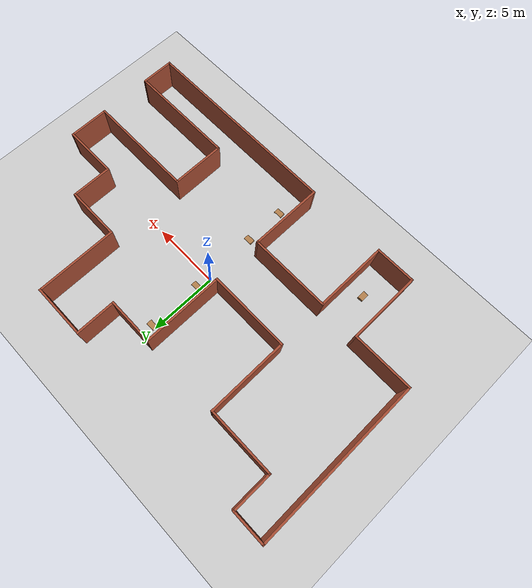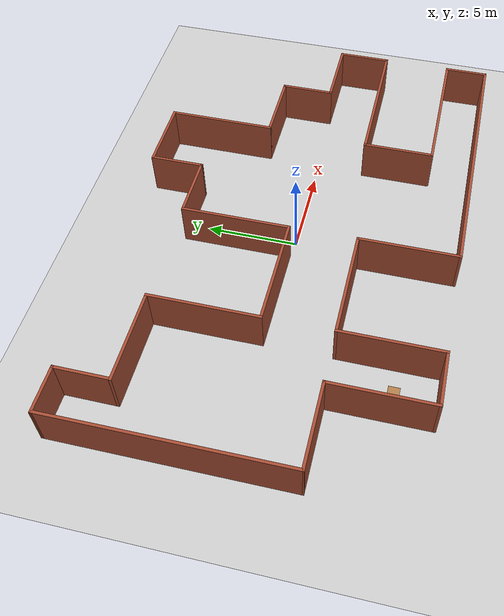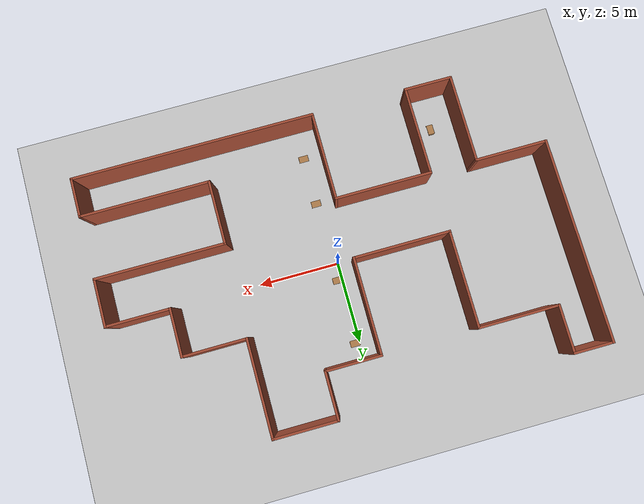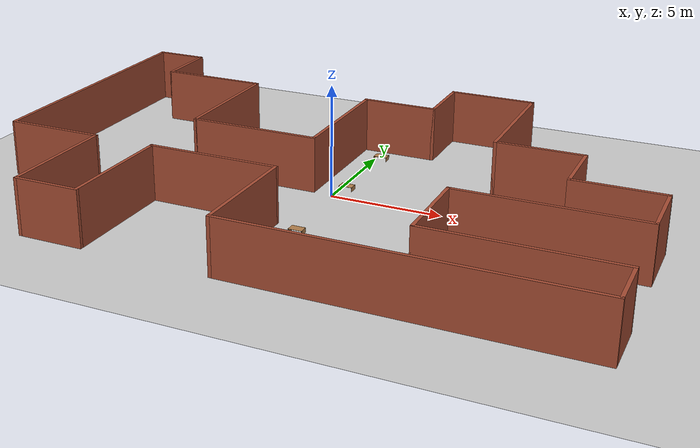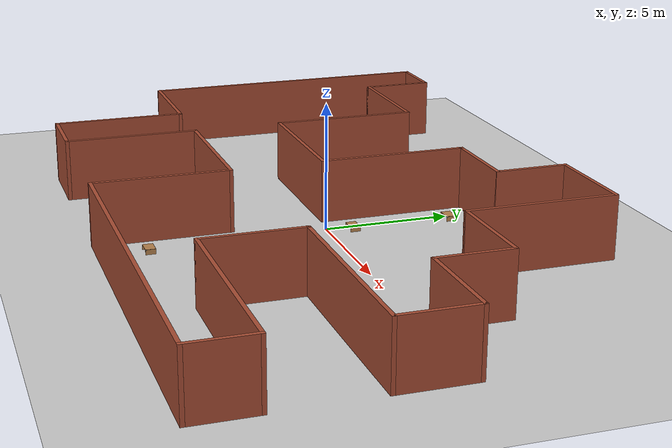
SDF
<?xml version="1.0"?>
<sdf version="1.7">
  <world name="test_world">

    <include>
      <uri>model://ground_plane</uri>
    </include>

    <include>
      <uri>model://sun</uri>
    </include>

    <scene>
      <shadows>false</shadows>
    </scene>

    <gui fullscreen='0'>
      <camera name='user_camera'>
        <pose frame=''>0.319654 -0.235002 9.29441 0 1.5138 0.009599</pose>
        <view_controller>orbit</view_controller>
        <projection_type>perspective</projection_type>
      </camera>
    </gui>

    <physics type="ode">
      <real_time_update_rate>1000.0</real_time_update_rate>
      <max_step_size>0.001</max_step_size>
      <real_time_factor>1</real_time_factor>
      <ode>
        <solver>
          <type>quick</type>
          <iters>150</iters>
          <precon_iters>0</precon_iters>
          <sor>1.400000</sor>
          <use_dynamic_moi_rescaling>1</use_dynamic_moi_rescaling>
        </solver>
        <constraints>
          <cfm>0.00001</cfm>
          <erp>0.2</erp>
          <contact_max_correcting_vel>2000.000000</contact_max_correcting_vel>
          <contact_surface_layer>0.01000</contact_surface_layer>
        </constraints>
      </ode>
    </physics>

    <model name="test_area">
      <static>1</static>
      <include>
        <uri>model://test_area</uri>
        <pose>0 0 0 0 0 0</pose>
      </include>
    </model>

    <include>
      <uri>model://qr_table1</uri>
      <name>qr_table1</name>
      <pose>0 1 0 0 0 0</pose>
    </include>

    <include>
      <uri>model://qr_table2</uri>
      <name>qr_table2</name>
      <pose>0 5 0 0 0 0</pose>
    </include>

    <include>
      <uri>model://qr_table3</uri>
      <name>qr_table3</name>
      <pose>0 -4 0 0 0 0</pose>
    </include>

    <include>
      <uri>model://qr_table4</uri>
      <name>qr_table4</name>
      <pose>0 -7 0 0 0 0</pose>
    </include>

    <include>
      <uri>model://qr_table5</uri>
      <name>qr_table5</name>
      <pose>-8 -7 0 0 0 1.5707</pose>
    </include>

  </world>
</sdf>

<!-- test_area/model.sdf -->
<sdf version='1.7'>
  <model name='test_area'>
    <pose>0 0 0 0 0 0</pose>
    <link name='Wall_15'>
      <collision name='Wall_15_Collision'>
        <geometry>
          <box>
            <size>2.5 0.15 2.5</size>
          </box>
        </geometry>
        <pose>0 0 1.25 0 -0 0</pose>
      </collision>
      <visual name='Wall_15_Visual'>
        <pose>0 0 1.25 0 -0 0</pose>
        <geometry>
          <box>
            <size>2.5 0.15 2.5</size>
          </box>
        </geometry>
        <material>
          <script>
            <uri>file://media/materials/scripts/gazebo.material</uri>
            <name>Gazebo/Bricks</name>
          </script>
          <ambient>1 1 1 1</ambient>
        </material>
        <meta>
          <layer>0</layer>
        </meta>
      </visual>
      <pose>-12.7998 8.87485 0 0 -0 0</pose>
    </link>
    <link name='Wall_16'>
      <collision name='Wall_16_Collision'>
        <geometry>
          <box>
            <size>3 0.15 2.5</size>
          </box>
        </geometry>
        <pose>0 0 1.25 0 -0 0</pose>
      </collision>
      <visual name='Wall_16_Visual'>
        <pose>0 0 1.25 0 -0 0</pose>
        <geometry>
          <box>
            <size>3 0.15 2.5</size>
          </box>
        </geometry>
        <material>
          <script>
            <uri>file://media/materials/scripts/gazebo.material</uri>
            <name>Gazebo/Bricks</name>
          </script>
          <ambient>1 1 1 1</ambient>
        </material>
        <meta>
          <layer>0</layer>
        </meta>
      </visual>
      <pose>-11.6248 7.44985 0 0 -0 -1.5708</pose>
    </link>
    <link name='Wall_17'>
      <collision name='Wall_17_Collision'>
        <geometry>
          <box>
            <size>5 0.15 2.5</size>
          </box>
        </geometry>
        <pose>0 0 1.25 0 -0 0</pose>
      </collision>
      <visual name='Wall_17_Visual'>
        <pose>0 0 1.25 0 -0 0</pose>
        <geometry>
          <box>
            <size>5 0.15 2.5</size>
          </box>
        </geometry>
        <material>
          <script>
            <uri>file://media/materials/scripts/gazebo.material</uri>
            <name>Gazebo/Bricks</name>
          </script>
          <ambient>1 1 1 1</ambient>
        </material>
        <meta>
          <layer>0</layer>
        </meta>
      </visual>
      <pose>-9.19985 6.02485 0 0 -0 0</pose>
    </link>
    <link name='Wall_18'>
      <collision name='Wall_18_Collision'>
        <geometry>
          <box>
            <size>6 0.15 2.5</size>
          </box>
        </geometry>
        <pose>0 0 1.25 0 -0 0</pose>
      </collision>
      <visual name='Wall_18_Visual'>
        <pose>0 0 1.25 0 -0 0</pose>
        <geometry>
          <box>
            <size>6 0.15 2.5</size>
          </box>
        </geometry>
        <material>
          <script>
            <uri>file://media/materials/scripts/gazebo.material</uri>
            <name>Gazebo/Bricks</name>
          </script>
          <ambient>1 1 1 1</ambient>
        </material>
        <meta>
          <layer>0</layer>
        </meta>
      </visual>
      <pose>-6.77485 3.09985 0 0 -0 -1.5708</pose>
    </link>
    <link name='Wall_19'>
      <collision name='Wall_19_Collision'>
        <geometry>
          <box>
            <size>6 0.15 2.5</size>
          </box>
        </geometry>
        <pose>0 0 1.25 0 -0 0</pose>
      </collision>
      <visual name='Wall_19_Visual'>
        <pose>0 0 1.25 0 -0 0</pose>
        <geometry>
          <box>
            <size>6 0.15 2.5</size>
          </box>
        </geometry>
        <material>
          <script>
            <uri>file://media/materials/scripts/gazebo.material</uri>
            <name>Gazebo/Bricks</name>
          </script>
          <ambient>1 1 1 1</ambient>
        </material>
        <meta>
          <layer>0</layer>
        </meta>
      </visual>
      <pose>-3.84985 0.174849 0 0 -0 0</pose>
    </link>
    <link name='Wall_20'>
      <collision name='Wall_20_Collision'>
        <geometry>
          <box>
            <size>6 0.15 2.5</size>
          </box>
        </geometry>
        <pose>0 0 1.25 0 -0 0</pose>
      </collision>
      <visual name='Wall_20_Visual'>
        <pose>0 0 1.25 0 -0 0</pose>
        <geometry>
          <box>
            <size>6 0.15 2.5</size>
          </box>
        </geometry>
        <material>
          <script>
            <uri>file://media/materials/scripts/gazebo.material</uri>
            <name>Gazebo/Bricks</name>
          </script>
          <ambient>1 1 1 1</ambient>
        </material>
        <meta>
          <layer>0</layer>
        </meta>
      </visual>
      <pose>-0.92485 3.09985 0 0 -0 1.5708</pose>
    </link>
    <link name='Wall_21'>
      <collision name='Wall_21_Collision'>
        <geometry>
          <box>
            <size>3.5 0.15 2.5</size>
          </box>
        </geometry>
        <pose>0 0 1.25 0 -0 0</pose>
      </collision>
      <visual name='Wall_21_Visual'>
        <pose>0 0 1.25 0 -0 0</pose>
        <geometry>
          <box>
            <size>3.5 0.15 2.5</size>
          </box>
        </geometry>
        <material>
          <script>
            <uri>file://media/materials/scripts/gazebo.material</uri>
            <name>Gazebo/Bricks</name>
          </script>
          <ambient>1 1 1 1</ambient>
        </material>
        <meta>
          <layer>0</layer>
        </meta>
      </visual>
      <pose>0.750151 6.02485 0 0 -0 0</pose>
    </link>
    <link name='Wall_22'>
      <collision name='Wall_22_Collision'>
        <geometry>
          <box>
            <size>3 0.15 2.5</size>
          </box>
        </geometry>
        <pose>0 0 1.25 0 -0 0</pose>
      </collision>
      <visual name='Wall_22_Visual'>
        <pose>0 0 1.25 0 -0 0</pose>
        <geometry>
          <box>
            <size>3 0.15 2.5</size>
          </box>
        </geometry>
        <material>
          <script>
            <uri>file://media/materials/scripts/gazebo.material</uri>
            <name>Gazebo/Bricks</name>
          </script>
          <ambient>1 1 1 1</ambient>
        </material>
        <meta>
          <layer>0</layer>
        </meta>
      </visual>
      <pose>2.42515 7.44985 0 0 -0 1.5708</pose>
    </link>
    <link name='Wall_23'>
      <collision name='Wall_23_Collision'>
        <geometry>
          <box>
            <size>4 0.15 2.5</size>
          </box>
        </geometry>
        <pose>0 0 1.25 0 -0 0</pose>
      </collision>
      <visual name='Wall_23_Visual'>
        <pose>0 0 1.25 0 -0 0</pose>
        <geometry>
          <box>
            <size>4 0.15 2.5</size>
          </box>
        </geometry>
        <material>
          <script>
            <uri>file://media/materials/scripts/gazebo.material</uri>
            <name>Gazebo/Bricks</name>
          </script>
          <ambient>1 1 1 1</ambient>
        </material>
        <meta>
          <layer>0</layer>
        </meta>
      </visual>
      <pose>4.35015 8.87485 0 0 -0 0</pose>
    </link>
    <link name='Wall_24'>
      <collision name='Wall_24_Collision'>
        <geometry>
          <box>
            <size>6 0.15 2.5</size>
          </box>
        </geometry>
        <pose>0 0 1.25 0 -0 0</pose>
      </collision>
      <visual name='Wall_24_Visual'>
        <pose>0 0 1.25 0 -0 0</pose>
        <geometry>
          <box>
            <size>6 0.15 2.5</size>
          </box>
        </geometry>
        <material>
          <script>
            <uri>file://media/materials/scripts/gazebo.material</uri>
            <name>Gazebo/Bricks</name>
          </script>
          <ambient>1 1 1 1</ambient>
        </material>
        <meta>
          <layer>0</layer>
        </meta>
      </visual>
      <pose>6.27515 5.94985 0 0 -0 -1.5708</pose>
    </link>
    <link name='Wall_25'>
      <collision name='Wall_25_Collision'>
        <geometry>
          <box>
            <size>4 0.15 2.5</size>
          </box>
        </geometry>
        <pose>0 0 1.25 0 -0 0</pose>
      </collision>
      <visual name='Wall_25_Visual'>
        <pose>0 0 1.25 0 -0 0</pose>
        <geometry>
          <box>
            <size>4 0.15 2.5</size>
          </box>
        </geometry>
        <material>
          <script>
            <uri>file://media/materials/scripts/gazebo.material</uri>
            <name>Gazebo/Bricks</name>
          </script>
          <ambient>1 1 1 1</ambient>
        </material>
        <meta>
          <layer>0</layer>
        </meta>
      </visual>
      <pose>8.20015 3.02485 0 0 -0 0</pose>
    </link>
    <link name='Wall_26'>
      <collision name='Wall_26_Collision'>
        <geometry>
          <box>
            <size>3 0.15 2.5</size>
          </box>
        </geometry>
        <pose>0 0 1.25 0 -0 0</pose>
      </collision>
      <visual name='Wall_26_Visual'>
        <pose>0 0 1.25 0 -0 0</pose>
        <geometry>
          <box>
            <size>3 0.15 2.5</size>
          </box>
        </geometry>
        <material>
          <script>
            <uri>file://media/materials/scripts/gazebo.material</uri>
            <name>Gazebo/Bricks</name>
          </script>
          <ambient>1 1 1 1</ambient>
        </material>
        <meta>
          <layer>0</layer>
        </meta>
      </visual>
      <pose>10.1252 1.59985 0 0 -0 -1.5708</pose>
    </link>
    <link name='Wall_27'>
      <collision name='Wall_27_Collision'>
        <geometry>
          <box>
            <size>4 0.15 2.5</size>
          </box>
        </geometry>
        <pose>0 0 1.25 0 -0 0</pose>
      </collision>
      <visual name='Wall_27_Visual'>
        <pose>0 0 1.25 0 -0 0</pose>
        <geometry>
          <box>
            <size>4 0.15 2.5</size>
          </box>
        </geometry>
        <material>
          <script>
            <uri>file://media/materials/scripts/gazebo.material</uri>
            <name>Gazebo/Bricks</name>
          </script>
          <ambient>1 1 1 1</ambient>
        </material>
        <meta>
          <layer>0</layer>
        </meta>
      </visual>
      <pose>12.0502 0.174849 0 0 -0 0</pose>
    </link>
    <link name='Wall_28'>
      <collision name='Wall_28_Collision'>
        <geometry>
          <box>
            <size>3 0.15 2.5</size>
          </box>
        </geometry>
        <pose>0 0 1.25 0 -0 0</pose>
      </collision>
      <visual name='Wall_28_Visual'>
        <pose>0 0 1.25 0 -0 0</pose>
        <geometry>
          <box>
            <size>3 0.15 2.5</size>
          </box>
        </geometry>
        <material>
          <script>
            <uri>file://media/materials/scripts/gazebo.material</uri>
            <name>Gazebo/Bricks</name>
          </script>
          <ambient>1 1 1 1</ambient>
        </material>
        <meta>
          <layer>0</layer>
        </meta>
      </visual>
      <pose>13.9751 -1.25015 0 0 -0 -1.5708</pose>
    </link>
    <link name='Wall_29'>
      <collision name='Wall_29_Collision'>
        <geometry>
          <box>
            <size>8 0.15 2.5</size>
          </box>
        </geometry>
        <pose>0 0 1.25 0 -0 0</pose>
      </collision>
      <visual name='Wall_29_Visual'>
        <pose>0 0 1.25 0 -0 0</pose>
        <geometry>
          <box>
            <size>8 0.15 2.5</size>
          </box>
        </geometry>
        <material>
          <script>
            <uri>file://media/materials/scripts/gazebo.material</uri>
            <name>Gazebo/Bricks</name>
          </script>
          <ambient>1 1 1 1</ambient>
        </material>
        <meta>
          <layer>0</layer>
        </meta>
      </visual>
      <pose>10.0502 -2.67515 0 0 -0 3.14159</pose>
    </link>
    <link name='Wall_30'>
      <collision name='Wall_30_Collision'>
        <geometry>
          <box>
            <size>4 0.15 2.5</size>
          </box>
        </geometry>
        <pose>0 0 1.25 0 -0 0</pose>
      </collision>
      <visual name='Wall_30_Visual'>
        <pose>0 0 1.25 0 -0 0</pose>
        <geometry>
          <box>
            <size>4 0.15 2.5</size>
          </box>
        </geometry>
        <material>
          <script>
            <uri>file://media/materials/scripts/gazebo.material</uri>
            <name>Gazebo/Bricks</name>
          </script>
          <ambient>1 1 1 1</ambient>
        </material>
        <meta>
          <layer>0</layer>
        </meta>
      </visual>
      <pose>6.12515 -4.60015 0 0 -0 -1.5708</pose>
    </link>
    <link name='Wall_31'>
      <collision name='Wall_31_Collision'>
        <geometry>
          <box>
            <size>8 0.15 2.5</size>
          </box>
        </geometry>
        <pose>0 0 1.25 0 -0 0</pose>
      </collision>
      <visual name='Wall_31_Visual'>
        <pose>0 0 1.25 0 -0 0</pose>
        <geometry>
          <box>
            <size>8 0.15 2.5</size>
          </box>
        </geometry>
        <material>
          <script>
            <uri>file://media/materials/scripts/gazebo.material</uri>
            <name>Gazebo/Bricks</name>
          </script>
          <ambient>1 1 1 1</ambient>
        </material>
        <meta>
          <layer>0</layer>
        </meta>
      </visual>
      <pose>10.0502 -6.52515 0 0 -0 0</pose>
    </link>
    <link name='Wall_33'>
      <collision name='Wall_33_Collision'>
        <geometry>
          <box>
            <size>2.5 0.15 2.5</size>
          </box>
        </geometry>
        <pose>0 0 1.25 0 -0 0</pose>
      </collision>
      <visual name='Wall_33_Visual'>
        <pose>0 0 1.25 0 -0 0</pose>
        <geometry>
          <box>
            <size>2.5 0.15 2.5</size>
          </box>
        </geometry>
        <material>
          <script>
            <uri>file://media/materials/scripts/gazebo.material</uri>
            <name>Gazebo/Bricks</name>
          </script>
          <ambient>1 1 1 1</ambient>
        </material>
        <meta>
          <layer>0</layer>
        </meta>
      </visual>
      <pose>13.9751 -7.70015 0 0 -0 -1.5708</pose>
    </link>
    <link name='Wall_34'>
      <collision name='Wall_34_Collision'>
        <geometry>
          <box>
            <size>15 0.15 2.5</size>
          </box>
        </geometry>
        <pose>0 0 1.25 0 -0 0</pose>
      </collision>
      <visual name='Wall_34_Visual'>
        <pose>0 0 1.25 0 -0 0</pose>
        <geometry>
          <box>
            <size>15 0.15 2.5</size>
          </box>
        </geometry>
        <material>
          <script>
            <uri>file://media/materials/scripts/gazebo.material</uri>
            <name>Gazebo/Bricks</name>
          </script>
          <ambient>1 1 1 1</ambient>
        </material>
        <meta>
          <layer>0</layer>
        </meta>
      </visual>
      <pose>6.55015 -8.87515 0 0 -0 3.14159</pose>
    </link>
    <link name='Wall_35'>
      <collision name='Wall_35_Collision'>
        <geometry>
          <box>
            <size>5.5 0.15 2.5</size>
          </box>
        </geometry>
        <pose>0 0 1.25 0 -0 0</pose>
      </collision>
      <visual name='Wall_35_Visual'>
        <pose>0 0 1.25 0 -0 0</pose>
        <geometry>
          <box>
            <size>5.5 0.15 2.5</size>
          </box>
        </geometry>
        <material>
          <script>
            <uri>file://media/materials/scripts/gazebo.material</uri>
            <name>Gazebo/Bricks</name>
          </script>
          <ambient>1 1 1 1</ambient>
        </material>
        <meta>
          <layer>0</layer>
        </meta>
      </visual>
      <pose>-0.874849 -6.20015 0 0 -0 1.5708</pose>
    </link>
    <link name='Wall_36'>
      <collision name='Wall_36_Collision'>
        <geometry>
          <box>
            <size>6 0.15 2.5</size>
          </box>
        </geometry>
        <pose>0 0 1.25 0 -0 0</pose>
      </collision>
      <visual name='Wall_36_Visual'>
        <pose>0 0 1.25 0 -0 0</pose>
        <geometry>
          <box>
            <size>6 0.15 2.5</size>
          </box>
        </geometry>
        <material>
          <script>
            <uri>file://media/materials/scripts/gazebo.material</uri>
            <name>Gazebo/Bricks</name>
          </script>
          <ambient>1 1 1 1</ambient>
        </material>
        <meta>
          <layer>0</layer>
        </meta>
      </visual>
      <pose>-3.79985 -3.52515 0 0 -0 3.14159</pose>
    </link>
    <link name='Wall_37'>
      <collision name='Wall_37_Collision'>
        <geometry>
          <box>
            <size>5.5 0.15 2.5</size>
          </box>
        </geometry>
        <pose>0 0 1.25 0 -0 0</pose>
      </collision>
      <visual name='Wall_37_Visual'>
        <pose>0 0 1.25 0 -0 0</pose>
        <geometry>
          <box>
            <size>5.5 0.15 2.5</size>
          </box>
        </geometry>
        <material>
          <script>
            <uri>file://media/materials/scripts/gazebo.material</uri>
            <name>Gazebo/Bricks</name>
          </script>
          <ambient>1 1 1 1</ambient>
        </material>
        <meta>
          <layer>0</layer>
        </meta>
      </visual>
      <pose>-6.72485 -6.20015 0 0 -0 -1.5708</pose>
    </link>
    <link name='Wall_38'>
      <collision name='Wall_38_Collision'>
        <geometry>
          <box>
            <size>3 0.15 2.5</size>
          </box>
        </geometry>
        <pose>0 0 1.25 0 -0 0</pose>
      </collision>
      <visual name='Wall_38_Visual'>
        <pose>0 0 1.25 0 -0 0</pose>
        <geometry>
          <box>
            <size>3 0.15 2.5</size>
          </box>
        </geometry>
        <material>
          <script>
            <uri>file://media/materials/scripts/gazebo.material</uri>
            <name>Gazebo/Bricks</name>
          </script>
          <ambient>1 1 1 1</ambient>
        </material>
        <meta>
          <layer>0</layer>
        </meta>
      </visual>
      <pose>-8.14985 -8.87515 0 0 -0 3.14159</pose>
    </link>
    <link name='Wall_39'>
      <collision name='Wall_39_Collision'>
        <geometry>
          <box>
            <size>5.5 0.15 2.5</size>
          </box>
        </geometry>
        <pose>0 0 1.25 0 -0 0</pose>
      </collision>
      <visual name='Wall_39_Visual'>
        <pose>0 0 1.25 0 -0 0</pose>
        <geometry>
          <box>
            <size>5.5 0.15 2.5</size>
          </box>
        </geometry>
        <material>
          <script>
            <uri>file://media/materials/scripts/gazebo.material</uri>
            <name>Gazebo/Bricks</name>
          </script>
          <ambient>1 1 1 1</ambient>
        </material>
        <meta>
          <layer>0</layer>
        </meta>
      </visual>
      <pose>-9.57485 -6.20015 0 0 -0 1.5708</pose>
    </link>
    <link name='Wall_40'>
      <collision name='Wall_40_Collision'>
        <geometry>
          <box>
            <size>4.5 0.15 2.5</size>
          </box>
        </geometry>
        <pose>0 0 1.25 0 -0 0</pose>
      </collision>
      <visual name='Wall_40_Visual'>
        <pose>0 0 1.25 0 -0 0</pose>
        <geometry>
          <box>
            <size>4.5 0.15 2.5</size>
          </box>
        </geometry>
        <material>
          <script>
            <uri>file://media/materials/scripts/gazebo.material</uri>
            <name>Gazebo/Bricks</name>
          </script>
          <ambient>1 1 1 1</ambient>
        </material>
        <meta>
          <layer>0</layer>
        </meta>
      </visual>
      <pose>-11.7498 -3.52515 0 0 -0 3.14159</pose>
    </link>
    <link name='Wall_41'>
      <collision name='Wall_41_Collision'>
        <geometry>
          <box>
            <size>12.5501 0.15 2.5</size>
          </box>
        </geometry>
        <pose>0 0 1.25 0 -0 0</pose>
      </collision>
      <visual name='Wall_41_Visual'>
        <pose>0 0 1.25 0 -0 0</pose>
        <geometry>
          <box>
            <size>12.5501 0.15 2.5</size>
          </box>
        </geometry>
        <material>
          <script>
            <uri>file://media/materials/scripts/gazebo.material</uri>
            <name>Gazebo/Bricks</name>
          </script>
          <ambient>1 1 1 1</ambient>
        </material>
        <meta>
          <layer>0</layer>
        </meta>
      </visual>
      <pose>-13.9498 2.67485 0 0 -0 1.57483</pose>
    </link>
    <static>1</static>
  </model>
</sdf>

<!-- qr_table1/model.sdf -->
<sdf version='1.7'>
  <model name='qr_table1'>

    <link name='table_leg_1'>

      <pose>0 0 0.1 0 0 0</pose>
	<static>false</static>
      <visual name='visual'>
        <pose>0 0 0 0 -0 0</pose>
        <geometry>
          <box>
            <size>0.005 0.4 0.2</size>
          </box>
        </geometry>
        <material>
          <lighting>1</lighting>
          <script>
            <uri>file://media/materials/scripts/gazebo.material</uri>
            <name>Gazebo/Wood</name>
          </script>
          <shader type='pixel'>
            <normal_map>__default__</normal_map>
          </shader>
          <ambient>0.3 0.3 0.3 1</ambient>
          <diffuse>0.7 0.7 0.7 1</diffuse>
          <specular>0.01 0.01 0.01 1</specular>
          <emissive>0 0 0 1</emissive>
        </material>
        <transparency>0</transparency>
        <cast_shadows>1</cast_shadows>
      </visual>

      <collision name="table_leg_1_collision">
        <pose>0 0 0.1 0 0 0</pose>
        <geometry>
          <box>
            <size>0.005 0.4 0.2</size>
          </box>
        </geometry>
      </collision>

    </link>

    <link name='table'>

      <pose>0.2975 0 0.2025 0 -0 0</pose>
	<static>false</static>
      <visual name='visual'>
        <pose>0.0 0 0 0 -0 0</pose>
        <geometry>
          <box>
            <size>0.6 0.4 0.005</size>
          </box>
        </geometry>
        <material>
          <lighting>1</lighting>
          <script>
            <uri>file://media/materials/scripts/gazebo.material</uri>
            <name>Gazebo/Wood</name>
          </script>
          <shader type='pixel'>
            <normal_map>__default__</normal_map>
          </shader>
          <ambient>0.3 0.3 0.3 1</ambient>
          <diffuse>0.7 0.7 0.7 1</diffuse>
          <specular>0.01 0.01 0.01 1</specular>
          <emissive>0 0 0 1</emissive>
        </material>
        <transparency>0</transparency>
        <cast_shadows>1</cast_shadows>
      </visual>

      <collision name="table_collision">
        <pose>0.0 0 0 0 -0 0</pose>
        <geometry>
          <box>
            <size>0.6 0.4 0.005</size>
          </box>
        </geometry>
      </collision>

    </link>

    <link name='table_leg_2'>
      <pose>0.595 0 0.1 0 -0 0</pose>
	<static>True</static>
      <visual name='visual'>
        <pose>0 0 0 0 -0 0</pose>
        <geometry>
          <box>
            <size>0.005 0.4 0.2</size>
          </box>
        </geometry>
        <material>
          <lighting>1</lighting>
          <script>
            <uri>file://media/materials/scripts/gazebo.material</uri>
            <name>Gazebo/Wood</name>
          </script>
          <shader type='pixel'>
            <normal_map>__default__</normal_map>
          </shader>
          <ambient>0.3 0.3 0.3 1</ambient>
          <diffuse>0.7 0.7 0.7 1</diffuse>
          <specular>0.01 0.01 0.01 1</specular>
          <emissive>0 0 0 1</emissive>
        </material>
        <transparency>0</transparency>
        <cast_shadows>1</cast_shadows>
      </visual>

      <collision name="table_leg_2_collision">
        <pose>0.0 0 0 0 -0 0</pose>
        <geometry>
          <box>
            <size>0.005 0.4 0.2</size>
          </box>
        </geometry>
      </collision>

    </link>

    <link name='qr_code'>
    	<pose>0.5975 -0.17 0.175 0 0 0</pose>
      <visual name='qr'>
      <pose>0 0 0 0 -0 0</pose>
        <geometry>
          <box>
            <size>0.001 0.05 0.05</size>
          </box>
        </geometry>
        <material>
          <script>

            <uri>model://qr_table1/materials/scripts</uri>
            <uri>model://qr_table1/materials/textures</uri>
            <name>qrs/Diffuse1</name>

          </script>
        </material>
      </visual>

      <collision name="qr_code_collision">
        <pose>0 0 0 0 -0 0</pose>
        <geometry>
          <box>
            <size>0.001 0.05 0.05</size>
          </box>
        </geometry>
      </collision>

    </link>

    <static>1</static>
    <allow_auto_disable>1</allow_auto_disable>
  </model>
</sdf>

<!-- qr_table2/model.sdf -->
<sdf version='1.7'>
  <model name='qr_table2'>

    <link name='table_leg_1'>

      <pose>0 0 0.1 0 0 0</pose>
	<static>false</static>
      <visual name='visual'>
        <pose>0 0 0 0 -0 0</pose>
        <geometry>
          <box>
            <size>0.005 0.4 0.2</size>
          </box>
        </geometry>
        <material>
          <lighting>1</lighting>
          <script>
            <uri>file://media/materials/scripts/gazebo.material</uri>
            <name>Gazebo/Wood</name>
          </script>
          <shader type='pixel'>
            <normal_map>__default__</normal_map>
          </shader>
          <ambient>0.3 0.3 0.3 1</ambient>
          <diffuse>0.7 0.7 0.7 1</diffuse>
          <specular>0.01 0.01 0.01 1</specular>
          <emissive>0 0 0 1</emissive>
        </material>
        <transparency>0</transparency>
        <cast_shadows>1</cast_shadows>
      </visual>

      <collision name="table_leg_1_collision">
        <pose>0 0 0.1 0 0 0</pose>
        <geometry>
          <box>
            <size>0.005 0.4 0.2</size>
          </box>
        </geometry>
      </collision>

    </link>

    <link name='table'>

      <pose>0.2975 0 0.2025 0 -0 0</pose>
	<static>false</static>
      <visual name='visual'>
        <pose>0.0 0 0 0 -0 0</pose>
        <geometry>
          <box>
            <size>0.6 0.4 0.005</size>
          </box>
        </geometry>
        <material>
          <lighting>1</lighting>
          <script>
            <uri>file://media/materials/scripts/gazebo.material</uri>
            <name>Gazebo/Wood</name>
          </script>
          <shader type='pixel'>
            <normal_map>__default__</normal_map>
          </shader>
          <ambient>0.3 0.3 0.3 1</ambient>
          <diffuse>0.7 0.7 0.7 1</diffuse>
          <specular>0.01 0.01 0.01 1</specular>
          <emissive>0 0 0 1</emissive>
        </material>
        <transparency>0</transparency>
        <cast_shadows>1</cast_shadows>
      </visual>

      <collision name="table_collision">
        <pose>0.0 0 0 0 -0 0</pose>
        <geometry>
          <box>
            <size>0.6 0.4 0.005</size>
          </box>
        </geometry>
      </collision>

    </link>

    <link name='table_leg_2'>
      <pose>0.595 0 0.1 0 -0 0</pose>
	<static>True</static>
      <visual name='visual'>
        <pose>0 0 0 0 -0 0</pose>
        <geometry>
          <box>
            <size>0.005 0.4 0.2</size>
          </box>
        </geometry>
        <material>
          <lighting>1</lighting>
          <script>
            <uri>file://media/materials/scripts/gazebo.material</uri>
            <name>Gazebo/Wood</name>
          </script>
          <shader type='pixel'>
            <normal_map>__default__</normal_map>
          </shader>
          <ambient>0.3 0.3 0.3 1</ambient>
          <diffuse>0.7 0.7 0.7 1</diffuse>
          <specular>0.01 0.01 0.01 1</specular>
          <emissive>0 0 0 1</emissive>
        </material>
        <transparency>0</transparency>
        <cast_shadows>1</cast_shadows>
      </visual>

      <collision name="table_leg_2_collision">
        <pose>0.0 0 0 0 -0 0</pose>
        <geometry>
          <box>
            <size>0.005 0.4 0.2</size>
          </box>
        </geometry>
      </collision>

    </link>

    <link name='qr_code'>
    	<pose>0.5975 -0.17 0.175 0 0 0</pose>
      <visual name='qr'>
      <pose>0 0 0 0 -0 0</pose>
        <geometry>
          <box>
            <size>0.001 0.05 0.05</size>
          </box>
        </geometry>
        <material>
          <script>

            <uri>model://qr_table1/materials/scripts</uri>
            <uri>model://qr_table1/materials/textures</uri>
            <name>qrs/Diffuse2</name>

          </script>
        </material>
      </visual>

      <collision name="qr_code_collision">
        <pose>0 0 0 0 -0 0</pose>
        <geometry>
          <box>
            <size>0.001 0.05 0.05</size>
          </box>
        </geometry>
      </collision>

    </link>

    <static>1</static>
    <allow_auto_disable>1</allow_auto_disable>
  </model>
</sdf>

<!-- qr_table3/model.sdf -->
<sdf version='1.7'>
  <model name='qr_table1'>

    <link name='table_leg_3'>

      <pose>0 0 0.1 0 0 0</pose>
	<static>false</static>
      <visual name='visual'>
        <pose>0 0 0 0 -0 0</pose>
        <geometry>
          <box>
            <size>0.005 0.4 0.2</size>
          </box>
        </geometry>
        <material>
          <lighting>1</lighting>
          <script>
            <uri>file://media/materials/scripts/gazebo.material</uri>
            <name>Gazebo/Wood</name>
          </script>
          <shader type='pixel'>
            <normal_map>__default__</normal_map>
          </shader>
          <ambient>0.3 0.3 0.3 1</ambient>
          <diffuse>0.7 0.7 0.7 1</diffuse>
          <specular>0.01 0.01 0.01 1</specular>
          <emissive>0 0 0 1</emissive>
        </material>
        <transparency>0</transparency>
        <cast_shadows>1</cast_shadows>
      </visual>

      <collision name="table_leg_1_collision">
        <pose>0 0 0.1 0 0 0</pose>
        <geometry>
          <box>
            <size>0.005 0.4 0.2</size>
          </box>
        </geometry>
      </collision>

    </link>

    <link name='table'>

      <pose>0.2975 0 0.2025 0 -0 0</pose>
	<static>false</static>
      <visual name='visual'>
        <pose>0.0 0 0 0 -0 0</pose>
        <geometry>
          <box>
            <size>0.6 0.4 0.005</size>
          </box>
        </geometry>
        <material>
          <lighting>1</lighting>
          <script>
            <uri>file://media/materials/scripts/gazebo.material</uri>
            <name>Gazebo/Wood</name>
          </script>
          <shader type='pixel'>
            <normal_map>__default__</normal_map>
          </shader>
          <ambient>0.3 0.3 0.3 1</ambient>
          <diffuse>0.7 0.7 0.7 1</diffuse>
          <specular>0.01 0.01 0.01 1</specular>
          <emissive>0 0 0 1</emissive>
        </material>
        <transparency>0</transparency>
        <cast_shadows>1</cast_shadows>
      </visual>

      <collision name="table_collision">
        <pose>0.0 0 0 0 -0 0</pose>
        <geometry>
          <box>
            <size>0.6 0.4 0.005</size>
          </box>
        </geometry>
      </collision>

    </link>

    <link name='table_leg_2'>
      <pose>0.595 0 0.1 0 -0 0</pose>
	<static>True</static>
      <visual name='visual'>
        <pose>0 0 0 0 -0 0</pose>
        <geometry>
          <box>
            <size>0.005 0.4 0.2</size>
          </box>
        </geometry>
        <material>
          <lighting>1</lighting>
          <script>
            <uri>file://media/materials/scripts/gazebo.material</uri>
            <name>Gazebo/Wood</name>
          </script>
          <shader type='pixel'>
            <normal_map>__default__</normal_map>
          </shader>
          <ambient>0.3 0.3 0.3 1</ambient>
          <diffuse>0.7 0.7 0.7 1</diffuse>
          <specular>0.01 0.01 0.01 1</specular>
          <emissive>0 0 0 1</emissive>
        </material>
        <transparency>0</transparency>
        <cast_shadows>1</cast_shadows>
      </visual>

      <collision name="table_leg_2_collision">
        <pose>0.0 0 0 0 -0 0</pose>
        <geometry>
          <box>
            <size>0.005 0.4 0.2</size>
          </box>
        </geometry>
      </collision>

    </link>

    <link name='qr_code'>
    	<pose>0.5975 -0.17 0.175 0 0 0</pose>
      <visual name='qr'>
      <pose>0 0 0 0 -0 0</pose>
        <geometry>
          <box>
            <size>0.001 0.05 0.05</size>
          </box>
        </geometry>
        <material>
          <script>

            <uri>model://qr_table1/materials/scripts</uri>
            <uri>model://qr_table1/materials/textures</uri>
            <name>qrs/Diffuse3</name>

          </script>
        </material>
      </visual>

      <collision name="qr_code_collision">
        <pose>0 0 0 0 -0 0</pose>
        <geometry>
          <box>
            <size>0.001 0.05 0.05</size>
          </box>
        </geometry>
      </collision>

    </link>

    <static>1</static>
    <allow_auto_disable>1</allow_auto_disable>
  </model>
</sdf>

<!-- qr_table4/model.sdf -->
<sdf version='1.7'>
  <model name='qr_table4'>

    <link name='table_leg_1'>

      <pose>0 0 0.1 0 0 0</pose>
	<static>false</static>
      <visual name='visual'>
        <pose>0 0 0 0 -0 0</pose>
        <geometry>
          <box>
            <size>0.005 0.4 0.2</size>
          </box>
        </geometry>
        <material>
          <lighting>1</lighting>
          <script>
            <uri>file://media/materials/scripts/gazebo.material</uri>
            <name>Gazebo/Wood</name>
          </script>
          <shader type='pixel'>
            <normal_map>__default__</normal_map>
          </shader>
          <ambient>0.3 0.3 0.3 1</ambient>
          <diffuse>0.7 0.7 0.7 1</diffuse>
          <specular>0.01 0.01 0.01 1</specular>
          <emissive>0 0 0 1</emissive>
        </material>
        <transparency>0</transparency>
        <cast_shadows>1</cast_shadows>
      </visual>

      <collision name="table_leg_1_collision">
        <pose>0 0 0.1 0 0 0</pose>
        <geometry>
          <box>
            <size>0.005 0.4 0.2</size>
          </box>
        </geometry>
      </collision>

    </link>

    <link name='table'>

      <pose>0.2975 0 0.2025 0 -0 0</pose>
	<static>false</static>
      <visual name='visual'>
        <pose>0.0 0 0 0 -0 0</pose>
        <geometry>
          <box>
            <size>0.6 0.4 0.005</size>
          </box>
        </geometry>
        <material>
          <lighting>1</lighting>
          <script>
            <uri>file://media/materials/scripts/gazebo.material</uri>
            <name>Gazebo/Wood</name>
          </script>
          <shader type='pixel'>
            <normal_map>__default__</normal_map>
          </shader>
          <ambient>0.3 0.3 0.3 1</ambient>
          <diffuse>0.7 0.7 0.7 1</diffuse>
          <specular>0.01 0.01 0.01 1</specular>
          <emissive>0 0 0 1</emissive>
        </material>
        <transparency>0</transparency>
        <cast_shadows>1</cast_shadows>
      </visual>

      <collision name="table_collision">
        <pose>0.0 0 0 0 -0 0</pose>
        <geometry>
          <box>
            <size>0.6 0.4 0.005</size>
          </box>
        </geometry>
      </collision>

    </link>

    <link name='table_leg_2'>
      <pose>0.595 0 0.1 0 -0 0</pose>
	<static>True</static>
      <visual name='visual'>
        <pose>0 0 0 0 -0 0</pose>
        <geometry>
          <box>
            <size>0.005 0.4 0.2</size>
          </box>
        </geometry>
        <material>
          <lighting>1</lighting>
          <script>
            <uri>file://media/materials/scripts/gazebo.material</uri>
            <name>Gazebo/Wood</name>
          </script>
          <shader type='pixel'>
            <normal_map>__default__</normal_map>
          </shader>
          <ambient>0.3 0.3 0.3 1</ambient>
          <diffuse>0.7 0.7 0.7 1</diffuse>
          <specular>0.01 0.01 0.01 1</specular>
          <emissive>0 0 0 1</emissive>
        </material>
        <transparency>0</transparency>
        <cast_shadows>1</cast_shadows>
      </visual>

      <collision name="table_leg_2_collision">
        <pose>0.0 0 0 0 -0 0</pose>
        <geometry>
          <box>
            <size>0.005 0.4 0.2</size>
          </box>
        </geometry>
      </collision>

    </link>

    <link name='qr_code'>
    	<pose>0.5975 -0.17 0.175 0 0 0</pose>
      <visual name='qr'>
      <pose>0 0 0 0 -0 0</pose>
        <geometry>
          <box>
            <size>0.001 0.05 0.05</size>
          </box>
        </geometry>
        <material>
          <script>

            <uri>model://qr_table1/materials/scripts</uri>
            <uri>model://qr_table1/materials/textures</uri>
            <name>qrs/Diffuse4</name>

          </script>
        </material>
      </visual>

      <collision name="qr_code_collision">
        <pose>0 0 0 0 -0 0</pose>
        <geometry>
          <box>
            <size>0.001 0.05 0.05</size>
          </box>
        </geometry>
      </collision>

    </link>

    <static>1</static>
    <allow_auto_disable>1</allow_auto_disable>
  </model>
</sdf>

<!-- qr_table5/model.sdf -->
<sdf version='1.7'>
  <model name='qr_table5'>

    <link name='table_leg_1'>

      <pose>0 0 0.1 0 0 0</pose>
	<static>false</static>
      <visual name='visual'>
        <pose>0 0 0 0 -0 0</pose>
        <geometry>
          <box>
            <size>0.005 0.4 0.2</size>
          </box>
        </geometry>
        <material>
          <lighting>1</lighting>
          <script>
            <uri>file://media/materials/scripts/gazebo.material</uri>
            <name>Gazebo/Wood</name>
          </script>
          <shader type='pixel'>
            <normal_map>__default__</normal_map>
          </shader>
          <ambient>0.3 0.3 0.3 1</ambient>
          <diffuse>0.7 0.7 0.7 1</diffuse>
          <specular>0.01 0.01 0.01 1</specular>
          <emissive>0 0 0 1</emissive>
        </material>
        <transparency>0</transparency>
        <cast_shadows>1</cast_shadows>
      </visual>

      <collision name="table_leg_1_collision">
        <pose>0 0 0.1 0 0 0</pose>
        <geometry>
          <box>
            <size>0.005 0.4 0.2</size>
          </box>
        </geometry>
      </collision>

    </link>

    <link name='table'>

      <pose>0.2975 0 0.2025 0 -0 0</pose>
	<static>false</static>
      <visual name='visual'>
        <pose>0.0 0 0 0 -0 0</pose>
        <geometry>
          <box>
            <size>0.6 0.4 0.005</size>
          </box>
        </geometry>
        <material>
          <lighting>1</lighting>
          <script>
            <uri>file://media/materials/scripts/gazebo.material</uri>
            <name>Gazebo/Wood</name>
          </script>
          <shader type='pixel'>
            <normal_map>__default__</normal_map>
          </shader>
          <ambient>0.3 0.3 0.3 1</ambient>
          <diffuse>0.7 0.7 0.7 1</diffuse>
          <specular>0.01 0.01 0.01 1</specular>
          <emissive>0 0 0 1</emissive>
        </material>
        <transparency>0</transparency>
        <cast_shadows>1</cast_shadows>
      </visual>

      <collision name="table_collision">
        <pose>0.0 0 0 0 -0 0</pose>
        <geometry>
          <box>
            <size>0.6 0.4 0.005</size>
          </box>
        </geometry>
      </collision>

    </link>

    <link name='table_leg_2'>
      <pose>0.595 0 0.1 0 -0 0</pose>
	<static>True</static>
      <visual name='visual'>
        <pose>0 0 0 0 -0 0</pose>
        <geometry>
          <box>
            <size>0.005 0.4 0.2</size>
          </box>
        </geometry>
        <material>
          <lighting>1</lighting>
          <script>
            <uri>file://media/materials/scripts/gazebo.material</uri>
            <name>Gazebo/Wood</name>
          </script>
          <shader type='pixel'>
            <normal_map>__default__</normal_map>
          </shader>
          <ambient>0.3 0.3 0.3 1</ambient>
          <diffuse>0.7 0.7 0.7 1</diffuse>
          <specular>0.01 0.01 0.01 1</specular>
          <emissive>0 0 0 1</emissive>
        </material>
        <transparency>0</transparency>
        <cast_shadows>1</cast_shadows>
      </visual>

      <collision name="table_leg_2_collision">
        <pose>0.0 0 0 0 -0 0</pose>
        <geometry>
          <box>
            <size>0.005 0.4 0.2</size>
          </box>
        </geometry>
      </collision>

    </link>

    <link name='qr_code'>
    	<pose>0.5975 -0.17 0.175 0 0 0</pose>
      <visual name='qr'>
      <pose>0 0 0 0 -0 0</pose>
        <geometry>
          <box>
            <size>0.001 0.05 0.05</size>
          </box>
        </geometry>
        <material>
          <script>

            <uri>model://qr_table1/materials/scripts</uri>
            <uri>model://qr_table1/materials/textures</uri>
            <name>qrs/Diffuse5</name>

          </script>
        </material>
      </visual>

      <collision name="qr_code_collision">
        <pose>0 0 0 0 -0 0</pose>
        <geometry>
          <box>
            <size>0.001 0.05 0.05</size>
          </box>
        </geometry>
      </collision>

    </link>

    <static>1</static>
    <allow_auto_disable>1</allow_auto_disable>
  </model>
</sdf>
